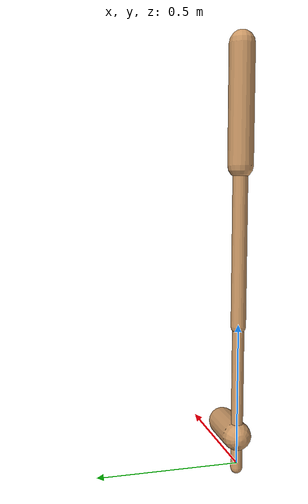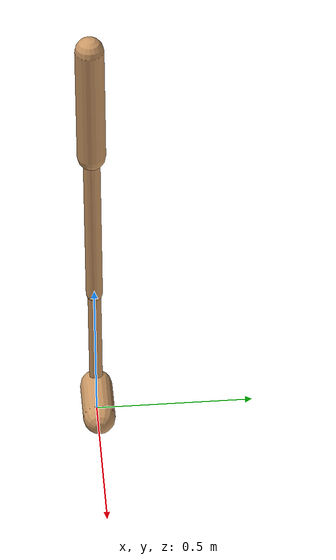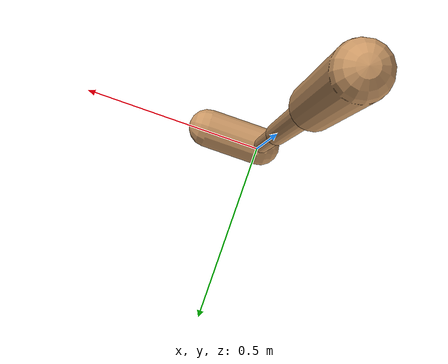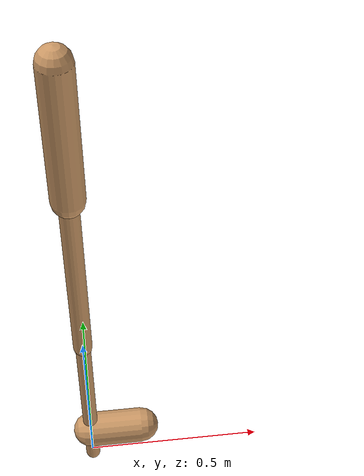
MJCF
<mujoco model="walker2d">
  <compiler angle="degree" coordinate="global" inertiafromgeom="true" />
  <default>
    <joint armature="0.01" damping=".1" limited="true" />
    <geom conaffinity="0" condim="3" contype="1" density="1000" friction="0.8 .1 .1" rgba="0.8 0.6 .4 1" />
  </default>
  <option integrator="RK4" timestep="0.002" />
  <worldbody>

    <body name="torso" pos="0 0 0.22087436207577138">
      <joint armature="0" axis="1 0 0" damping="0" limited="false" name="ignorex" pos="0 0 0" stiffness="0" type="slide" />
      <joint armature="0" axis="0 0 1" damping="0" limited="false" name="ignorez" pos="0 0 0" ref="1.25" stiffness="0" type="slide" />
      <joint armature="0" axis="0 1 0" damping="0" limited="false" name="ignorey" pos="0 0 0" stiffness="0" type="hinge" />
      <geom fromto="0 0 1.45 0 0 1.05" name="torso_geom" size="0.04400802819971894" type="capsule" />
      <body name="thigh">
        <joint axis="0 -1 0" name="thigh_joint" pos="0 0 1.05" range="-150 0" type="hinge" />
        <geom fromto="0.0 0.0 1.05 0.0 0.0 0.4953753021746346" name="thigh_geom" size="0.02608686910963176" type="capsule" />
        <body name="leg" pos="0.0 0.0 -0.10462469782536538">
          <joint axis="0 -1 0" name="leg_joint" pos="0 0 0.6" range="-150 0" type="hinge" />
          <geom fromto="0.0 0.0 0.6 0.0 0.0 -0.01624966425040597" name="leg_geom" size="0.02086949528770541" type="capsule" />
          <body name="foot" pos="0.0 0.0 -0.11624966425040598">
            <joint axis="0 -1 0" name="foot_joint" pos="0 0 0.1" range="-45 45" type="hinge" />
            <geom fromto="0.0 0.0 0.1 0.14989902213706308 0.0 0.1" name="foot_geom" size="0.05093726018444008" type="capsule" />
          </body>
        </body>
      </body>

      <body name="thigh_left">
        <joint axis="0 -1 0" name="thigh_left_joint" pos="0 0 1.05" range="-150 0" type="hinge" />
        <geom fromto="0.0 0.0 1.05 0.0 0.0 0.4953753021746346" name="thigh_left_geom" rgba=".7 .3 .6 1" size="0.02608686910963176" type="capsule" />
        <body name="leg_left" pos="0.0 0.0 -0.10462469782536538">
          <joint axis="0 -1 0" name="leg_left_joint" pos="0 0 0.6" range="-150 0" type="hinge" />
          <geom fromto="0.0 0.0 0.6 0.0 0.0 -0.01624966425040597" name="leg_left_geom" rgba=".7 .3 .6 1" size="0.02086949528770541" type="capsule" />
          <body name="foot_left" pos="0.0 0.0 -0.11624966425040598">
            <joint axis="0 -1 0" name="foot_left_joint" pos="0 0 0.1" range="-45 45" type="hinge" />
            <geom fromto="0.0 0.0 0.1 0.14989902213706308 0.0 0.1" name="foot_left_geom" rgba=".7 .3 .6 1" size="0.05093726018444008" type="capsule" />
          </body>
        </body>
      </body>
    </body>
  </worldbody>
  <actuator>

    <motor ctrllimited="true" ctrlrange="-1.0 1.0" gear="100" joint="thigh_joint" />
    <motor ctrllimited="true" ctrlrange="-1.0 1.0" gear="100" joint="leg_joint" />
    <motor ctrllimited="true" ctrlrange="-1.0 1.0" gear="100" joint="foot_joint" />
    <motor ctrllimited="true" ctrlrange="-1.0 1.0" gear="100" joint="thigh_left_joint" />
    <motor ctrllimited="true" ctrlrange="-1.0 1.0" gear="100" joint="leg_left_joint" />
    <motor ctrllimited="true" ctrlrange="-1.0 1.0" gear="100" joint="foot_left_joint" />

  </actuator>
</mujoco>
